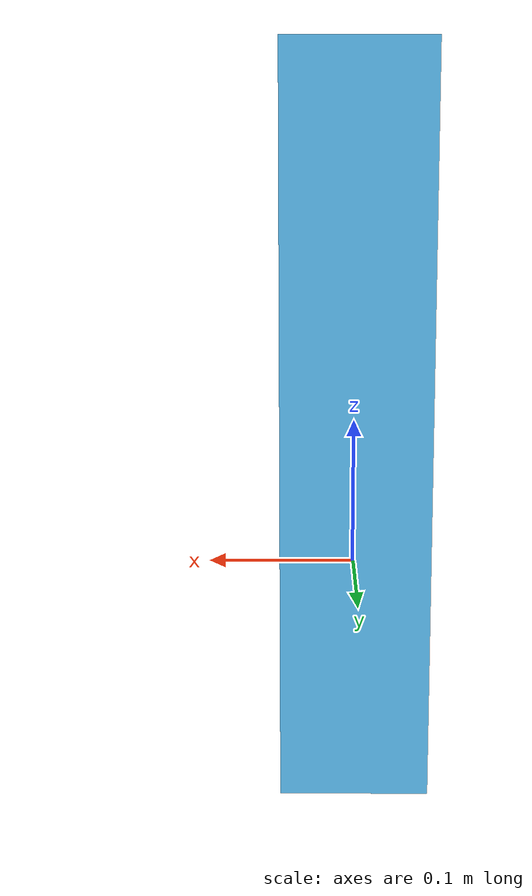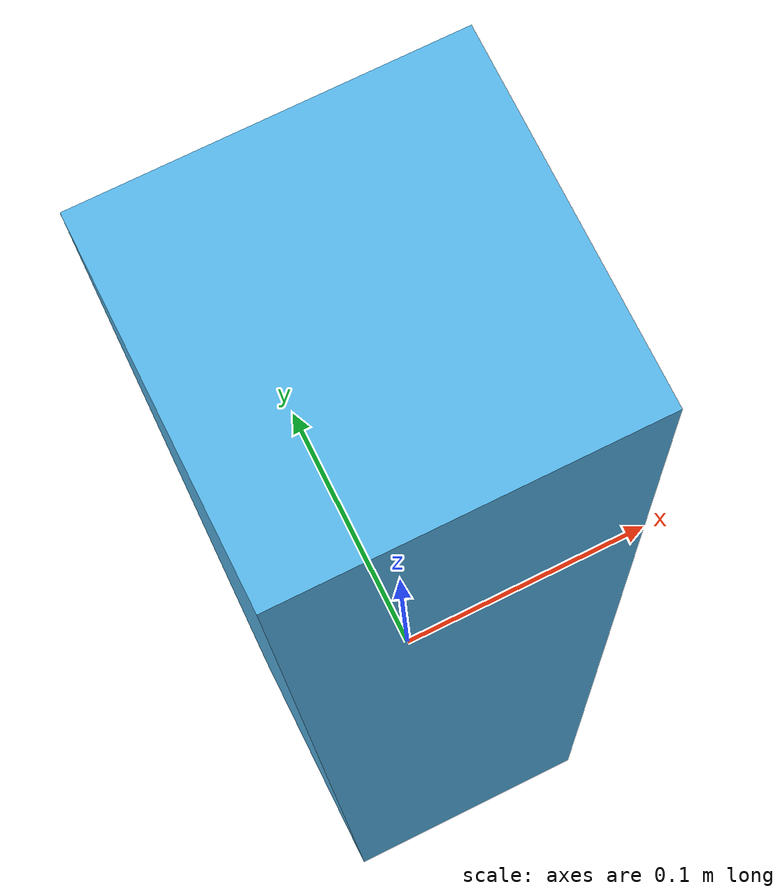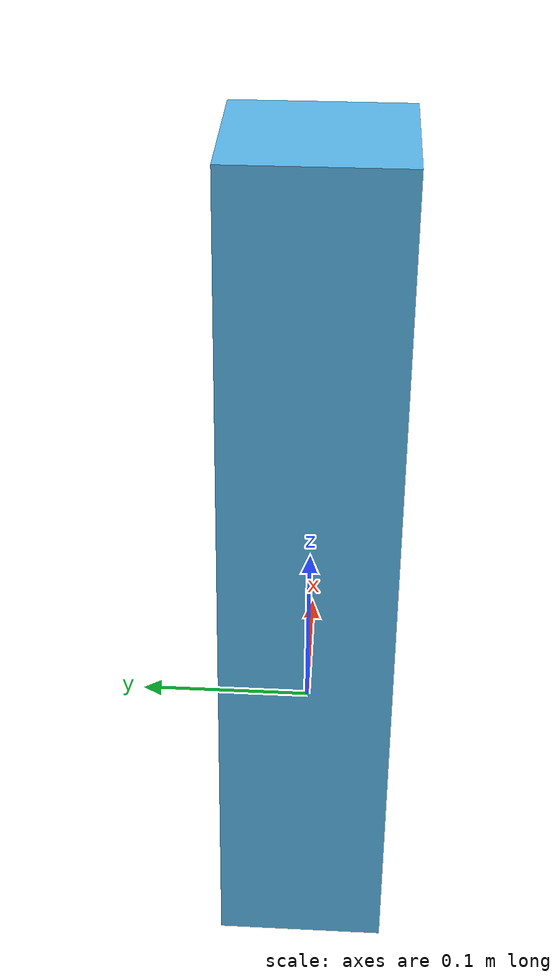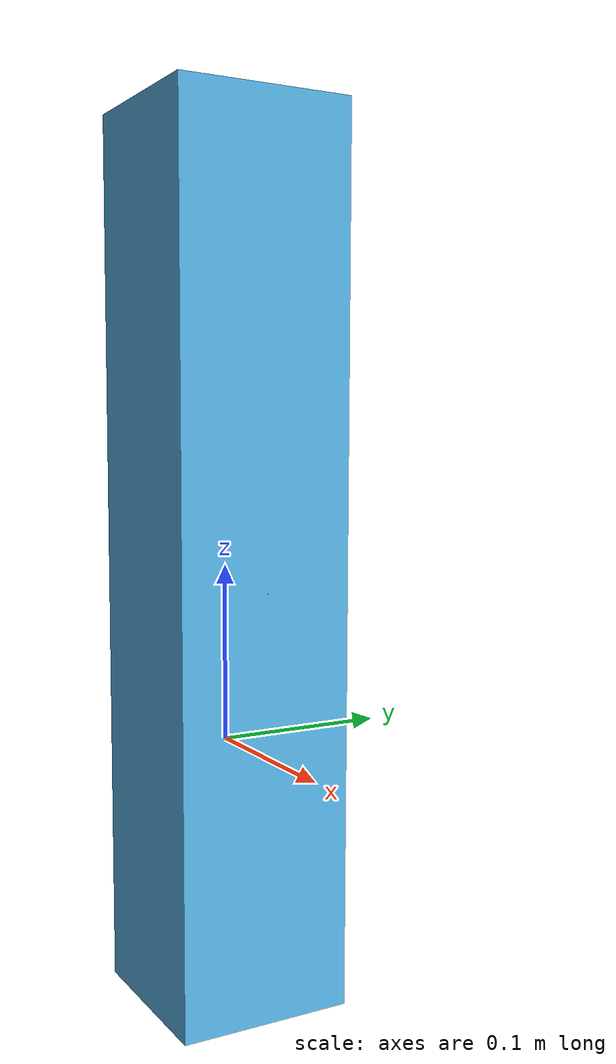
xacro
<?xml version="1.0"?>
<robot name="servo_simulation">

  <!-- Define the base link (fixed part) -->
  <link name="base_link">
    <visual>
      <geometry>
        <cylinder radius="0.05" length="0.2" />
      </geometry>
    </visual>
  </link>

  <!-- Define the rotating part (e.g., the arm or end-effector) -->
  <link name="arm">
    <visual>
      <geometry>
        <box size="0.1 0.1 0.5" />
      </geometry>
    </visual>
  </link>

  <!-- Define the joint that connects the base to the arm (rotating joint) -->
  <joint name="servo_joint" type="revolute">
    <parent link="base_link"/>
    <child link="arm"/>
    <origin xyz="0 0 0.1" rpy="0 0 0" />
    <axis xyz="0 0 1" />
    <limit lower="-1.5" upper="1.5" effort="10" velocity="1.0" />
  </joint>

</robot>
